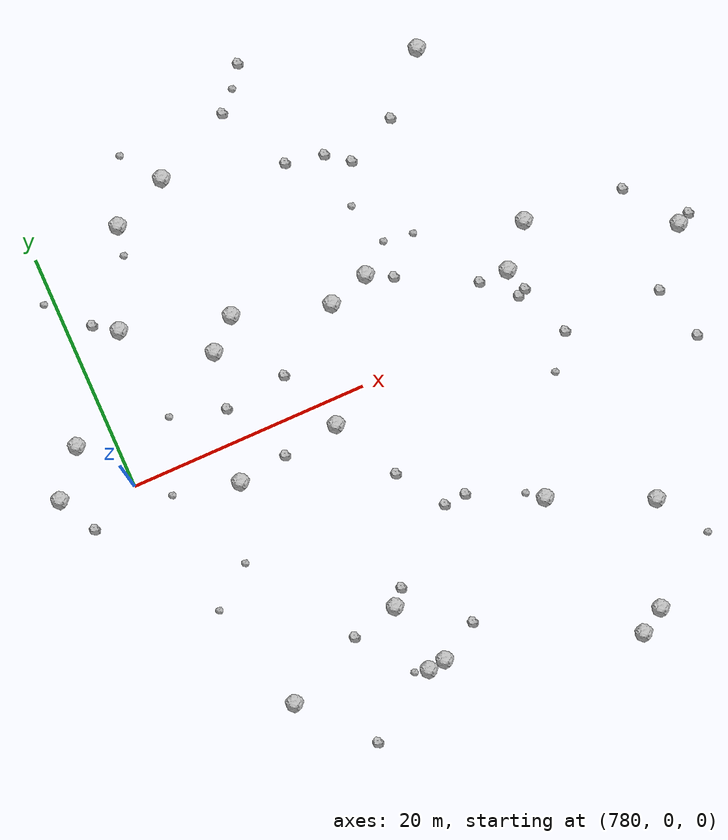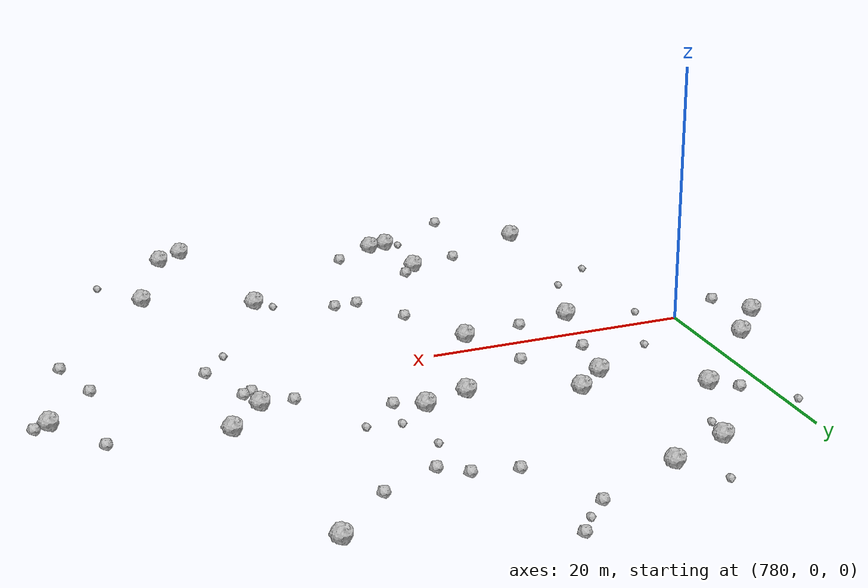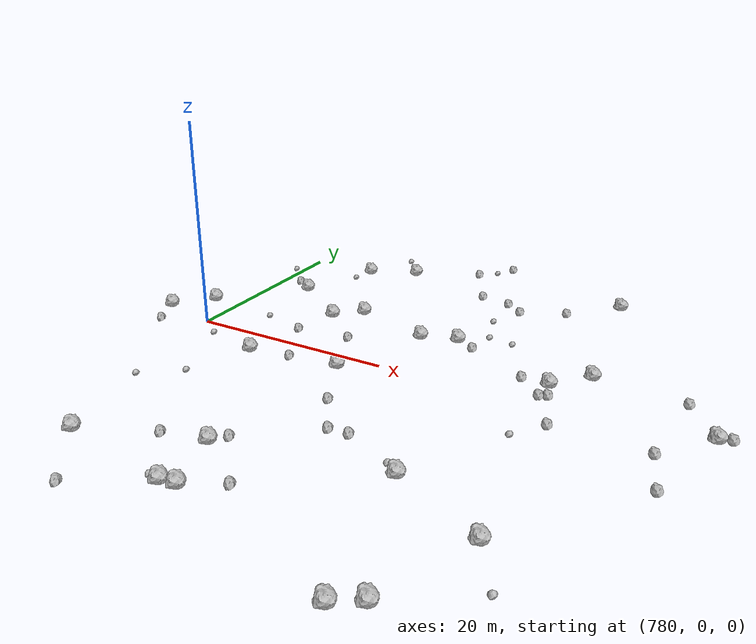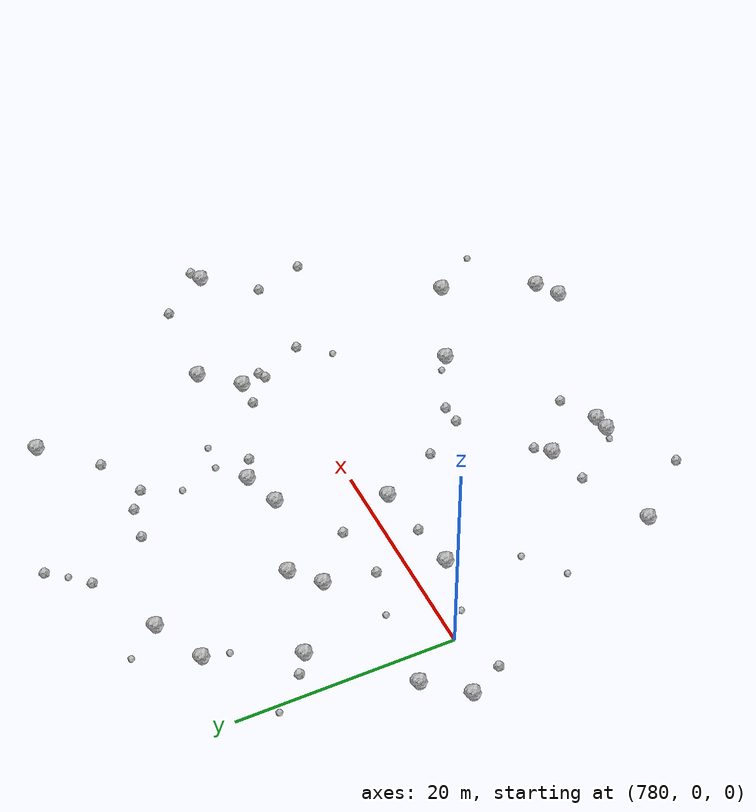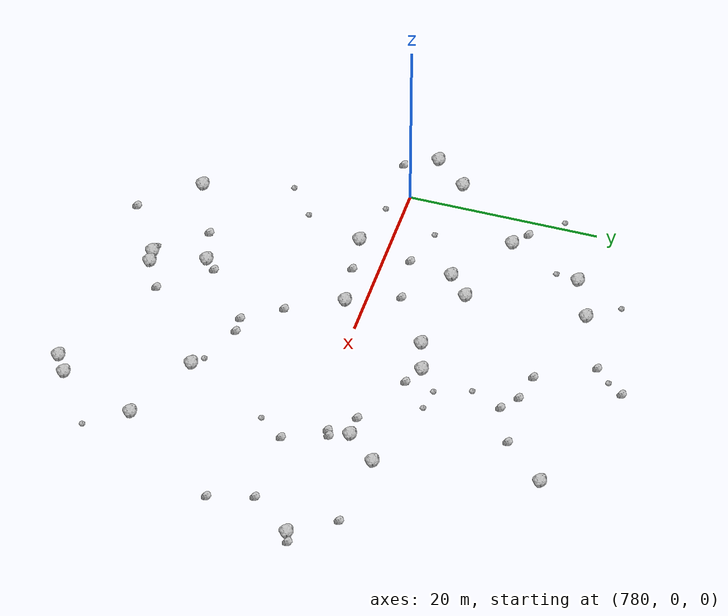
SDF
<sdf version="1.6">
 <world name="default">
  <include><uri>model://sun</uri></include>
  <model name="rock1_20_4">
   <include><uri>model://rock1</uri><pose>814.574976937259 -25.88878177501479 0.5 0 0 0</pose></include>
  </model>
  <model name="rock1_20_5">
   <include><uri>model://rock1</uri><pose>790.206169470581 7.335432232790858 0.5 0 0 0</pose></include>
  </model>
  <model name="rock1_20_6">
   <include><uri>model://rock1</uri><pose>787.9344483790258 -3.107613036825068 0.5 0 0 0</pose></include>
  </model>
  <model name="rock1_20_7">
   <include><uri>model://rock1</uri><pose>777.0731343187309 4.828223122642349 0.5 0 0 0</pose></include>
  </model>
  <model name="rock1_20_8">
   <include><uri>model://rock1</uri><pose>792.6360020520202 9.501337568407934 0.5 0 0 0</pose></include>
  </model>
  <model name="rock1_20_9">
   <include><uri>model://rock1</uri><pose>787.2000097101003 19.848848227786725 0.5 0 0 0</pose></include>
  </model>
  <model name="rock1_20_10">
   <include><uri>model://rock1</uri><pose>817.8802067607952 -17.78280866358638 0.5 0 0 0</pose></include>
  </model>
  <model name="rock1_20_11">
   <include><uri>model://rock1</uri><pose>812.5278359717613 -27.148691993781156 0.5 0 0 0</pose></include>
  </model>
  <model name="rock1_20_12">
   <include><uri>model://rock1</uri><pose>809.7498586424426 -14.09775781879453 0.5 0 0 0</pose></include>
  </model>
  <model name="rock1_20_13">
   <include><uri>model://rock1</uri><pose>796.8062026684137 -1.9753017619606403 0.5 0 0 0</pose></include>
  </model>
  <model name="rock1_20_14">
   <include><uri>model://rock1</uri><pose>784.7942838103562 -21.041714862183184 0.5 0 0 0</pose></include>
  </model>
  <model name="rock1_20_15">
   <include><uri>model://rock1</uri><pose>800.4196238191412 7.104443071957554 0.5 0 0 0</pose></include>
  </model>
  <model name="rock1_20_16">
   <include><uri>model://rock1</uri><pose>783.909004232476 12.023404335961267 0.5 0 0 0</pose></include>
  </model>
  <model name="rock1_20_17">
   <include><uri>model://rock1</uri><pose>795.6693279951949 -22.904605509721744 0.5 0 0 0</pose></include>
  </model>
  <model name="rock1_20_18">
   <include><uri>model://rock1</uri><pose>815.1514432923652 23.420528637470582 0.5 0 0 0</pose></include>
  </model>
  <model name="rock1_20_19">
   <include><uri>model://rock1</uri><pose>795.2170235149439 -17.23026890903179 0.5 0 0 0</pose></include>
  </model>
  <model name="rock1_20_20">
   <include><uri>model://rock1</uri><pose>803.8743074034378 8.163864352705524 0.5 0 0 0</pose></include>
  </model>
  <model name="rock1_20_21">
   <include><uri>model://rock1</uri><pose>791.9607660469127 21.968053838738314 0.5 0 0 0</pose></include>
  </model>
  <model name="rock1_20_22">
   <include><uri>model://rock1</uri><pose>814.4979167992531 3.8930654639335884 0.5 0 0 0</pose></include>
  </model>
  <model name="rock1_20_23">
   <include><uri>model://rock1</uri><pose>774.1240370061703 1.3721196932631763 0.5 0 0 0</pose></include>
  </model>
  <model name="rock1_20_24">
   <include><uri>model://rock1</uri><pose>797.134842417724 -22.700153060335673 0.5 0 0 0</pose></include>
  </model>
  <model name="rock1_20_25">
   <include><uri>model://rock1</uri><pose>817.3250513222704 7.03772847400991 0.5 0 0 0</pose></include>
  </model>
  <model name="rock1_20_26">
   <include><uri>model://rock1</uri><pose>828.6522629525087 1.7884142162719598 0.5 0 0 0</pose></include>
  </model>
  <model name="rock2_20_0">
   <include><uri>model://rock2</uri><pose>792.0489348902672 -2.5920981400953664 0.3 0 0 0</pose></include>
  </model>
  <model name="rock2_20_1">
   <include><uri>model://rock2</uri><pose>794.5669964546074 3.3557933896957977 0.3 0 0 0</pose></include>
  </model>
  <model name="rock2_20_2">
   <include><uri>model://rock2</uri><pose>789.5950244957771 -26.564957505283605 0.3 0 0 0</pose></include>
  </model>
  <model name="rock2_20_3">
   <include><uri>model://rock2</uri><pose>810.8475588213371 19.04295534441102 0.3 0 0 0</pose></include>
  </model>
  <model name="rock2_20_4">
   <include><uri>model://rock2</uri><pose>800.380431491806 -20.863837666057847 0.3 0 0 0</pose></include>
  </model>
  <model name="rock2_20_5">
   <include><uri>model://rock2</uri><pose>803.995685962485 -11.249599729880238 0.3 0 0 0</pose></include>
  </model>
  <model name="rock2_20_6">
   <include><uri>model://rock2</uri><pose>826.27792171701 -7.071035236207386 0.3 0 0 0</pose></include>
  </model>
  <model name="rock2_20_7">
   <include><uri>model://rock2</uri><pose>796.2757206834599 -16.043927360258643 0.3 0 0 0</pose></include>
  </model>
  <model name="rock2_20_8">
   <include><uri>model://rock2</uri><pose>824.9962632371131 -2.5243953988688297 0.3 0 0 0</pose></include>
  </model>
  <model name="rock2_20_9">
   <include><uri>model://rock2</uri><pose>802.1559906877422 -11.359574428091143 0.3 0 0 0</pose></include>
  </model>
  <model name="rock2_20_10">
   <include><uri>model://rock2</uri><pose>805.8620830603616 7.091097540527883 0.3 0 0 0</pose></include>
  </model>
  <model name="rock2_20_11">
   <include><uri>model://rock2</uri><pose>815.114432441311 1.950136329159072 0.3 0 0 0</pose></include>
  </model>
  <model name="rock2_20_12">
   <include><uri>model://rock2</uri><pose>799.5784203464056 -7.512854021972313 0.3 0 0 0</pose></include>
  </model>
  <model name="rock2_20_13">
   <include><uri>model://rock2</uri><pose>814.4267975836026 1.6307348316834904 0.3 0 0 0</pose></include>
  </model>
  <model name="rock2_20_14">
   <include><uri>model://rock2</uri><pose>798.5515662246512 24.892988855082386 0.3 0 0 0</pose></include>
  </model>
  <model name="rock2_20_15">
   <include><uri>model://rock2</uri><pose>829.7071597973754 2.2600785762566886 0.3 0 0 0</pose></include>
  </model>
  <model name="rock2_20_16">
   <include><uri>model://rock2</uri><pose>791.2681238728609 -18.157550983444906 0.3 0 0 0</pose></include>
  </model>
  <model name="rock2_20_17">
   <include><uri>model://rock2</uri><pose>801.3374920235128 28.13645334898704 0.3 0 0 0</pose></include>
  </model>
  <model name="rock2_20_18">
   <include><uri>model://rock2</uri><pose>804.7464216507384 18.470954121794982 0.3 0 0 0</pose></include>
  </model>
  <model name="rock2_20_19">
   <include><uri>model://rock2</uri><pose>825.6466951672398 6.207138478048726 0.3 0 0 0</pose></include>
  </model>
  <model name="rock2_20_20">
   <include><uri>model://rock2</uri><pose>775.7219298153439 -1.89172007290518 0.3 0 0 0</pose></include>
  </model>
  <model name="rock2_20_21">
   <include><uri>model://rock2</uri><pose>782.0554224441197 13.28623133453118 0.3 0 0 0</pose></include>
  </model>
  <model name="rock2_20_22">
   <include><uri>model://rock2</uri><pose>806.5623152538168 17.095430537593813 0.3 0 0 0</pose></include>
  </model>
  <model name="rock2_20_23">
   <include><uri>model://rock2</uri><pose>816.6896810909861 -2.493414255469851 0.3 0 0 0</pose></include>
  </model>
  <model name="rock2_20_24">
   <include><uri>model://rock2</uri><pose>789.2745377665894 2.7427109639550977 0.3 0 0 0</pose></include>
  </model>
  <model name="rock2_20_25">
   <include><uri>model://rock2</uri><pose>811.9996453497063 3.9324466935889504 0.3 0 0 0</pose></include>
  </model>
  <model name="rock2_20_26">
   <include><uri>model://rock2</uri><pose>801.5639138551894 19.11067101069404 0.3 0 0 0</pose></include>
  </model>
  <model name="rock3_20_0">
   <include><uri>model://rock3</uri><pose>805.0587715828419 13.735370976490529 0.2 0 0 0</pose></include>
  </model>
  <model name="rock3_20_1">
   <include><uri>model://rock3</uri><pose>800.0786155298011 26.414419666294208 0.2 0 0 0</pose></include>
  </model>
  <model name="rock3_20_2">
   <include><uri>model://rock3</uri><pose>782.4841310845949 -1.891101310403105 0.2 0 0 0</pose></include>
  </model>
  <model name="rock3_20_3">
   <include><uri>model://rock3</uri><pose>785.6413901212331 -9.233251727658587 0.2 0 0 0</pose></include>
  </model>
  <model name="rock3_20_4">
   <include><uri>model://rock3</uri><pose>784.7502498864812 4.008461261266618 0.2 0 0 0</pose></include>
  </model>
  <model name="rock3_20_5">
   <include><uri>model://rock3</uri><pose>779.17143546558 16.38170762186799 0.2 0 0 0</pose></include>
  </model>
  <model name="rock3_20_6">
   <include><uri>model://rock3</uri><pose>789.5732087596404 25.054064011546018 0.2 0 0 0</pose></include>
  </model>
  <model name="rock3_20_7">
   <include><uri>model://rock3</uri><pose>806.249360243444 10.069002478220007 0.2 0 0 0</pose></include>
  </model>
  <model name="rock3_20_8">
   <include><uri>model://rock3</uri><pose>808.4471972558811 -13.145258701250228 0.2 0 0 0</pose></include>
  </model>
  <model name="rock3_20_9">
   <include><uri>model://rock3</uri><pose>814.6091731773513 -5.195485469230682 0.2 0 0 0</pose></include>
  </model>
  <model name="rock3_20_10">
   <include><uri>model://rock3</uri><pose>808.7126719416635 9.712110713995877 0.2 0 0 0</pose></include>
  </model>
  <model name="rock3_20_11">
   <include><uri>model://rock3</uri><pose>782.2320680226671 -11.865616259398685 0.2 0 0 0</pose></include>
  </model>
  <model name="rock3_20_12">
   <include><uri>model://rock3</uri><pose>786.6333529585525 17.45185074149896 0.2 0 0 0</pose></include>
  </model>
  <model name="rock3_20_13">
   <include><uri>model://rock3</uri><pose>820.5087636445503 -21.87686373340064 0.2 0 0 0</pose></include>
  </model>
  <model name="rock3_20_14">
   <include><uri>model://rock3</uri><pose>794.4915154709447 -22.668894478795874 0.2 0 0 0</pose></include>
  </model>
 </world>
</sdf>
